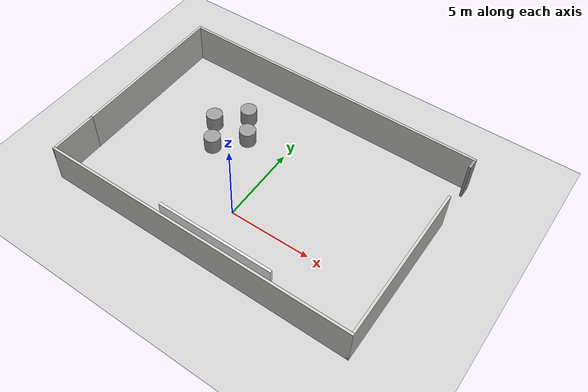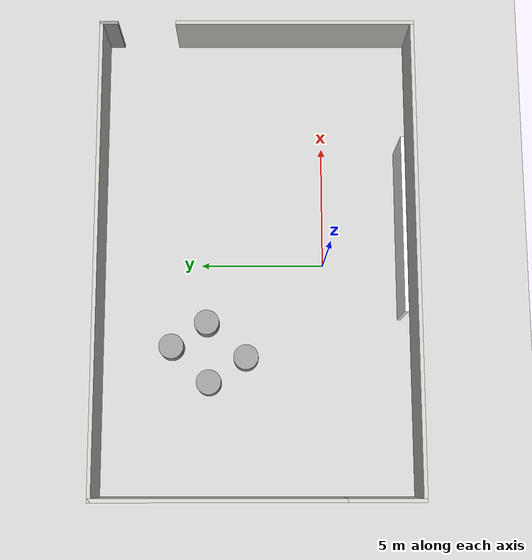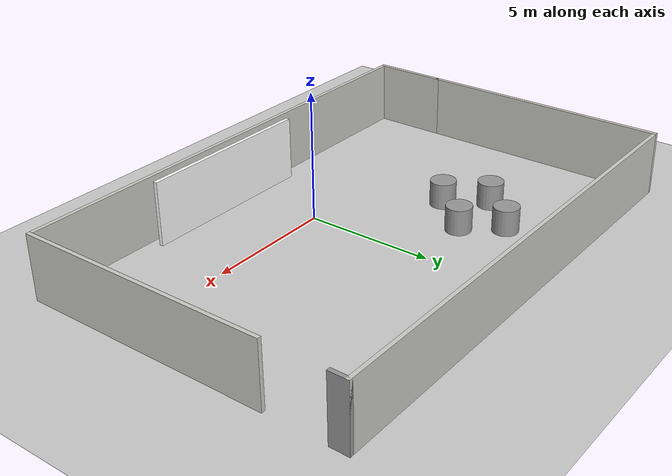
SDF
<sdf version="1.6">
 <world name="default">
  <light name="sun" type="directional">
   <pose>0 0 10 0 -0 0</pose>
   <diffuse>0.8 0.8 0.8 1</diffuse>
   <specular>0.1 0.1 0.1 1</specular>
   <attenuation>
    <range>1000</range>
    <constant>0.9</constant>
    <linear>0.01</linear>
    <quadratic>0.001</quadratic>
   </attenuation>
   <direction>-0.5 0.5 -1</direction>
  </light>
  <model name="ground_plane">
   <static>1</static>
   <link name="link">
    <collision name="collision">
     <geometry><plane><normal>0 0 1</normal><size>100 100</size></plane></geometry>
     <surface><friction><ode><mu>100</mu><mu2>50</mu2></ode></friction></surface>
    </collision>
    <visual name="visual">
     <cast_shadows>0</cast_shadows>
     <geometry><plane><normal>0 0 1</normal><size>100 100</size></plane></geometry>
     <material>
      <script><uri>file://media/materials/scripts/gazebo.material</uri><name>Gazebo/Grey</name></script>
     </material>
    </visual>
   </link>
  </model>
  <gravity>0 0 -9.8</gravity>
  <magnetic_field>6e-06 2.3e-05 -4.2e-05</magnetic_field>
  <atmosphere type="adiabatic"/>
  <physics name="default_physics" default="0" type="ode">
   <max_step_size>0.001</max_step_size>
   <real_time_factor>1</real_time_factor>
   <real_time_update_rate>1000</real_time_update_rate>
  </physics>
  <scene><ambient>0.4 0.4 0.4 1</ambient><background>0.7 0.7 0.7 1</background><shadows>1</shadows></scene>
  <spherical_coordinates>
   <surface_model>EARTH_WGS84</surface_model>
   <latitude_deg>0</latitude_deg>
   <longitude_deg>0</longitude_deg>
   <elevation>0</elevation>
   <heading_deg>0</heading_deg>
  </spherical_coordinates>
  <model name="super">
   <pose>0.13966 2.72821 0 0 -0 0</pose>
   <link name="Wall_29">
    <collision name="Wall_29_Collision">
     <geometry><box><size>10 0.15 2.5</size></box></geometry>
     <pose>0 0 1.25 0 -0 0</pose>
    </collision>
    <visual name="Wall_29_Visual">
     <pose>0 0 1.25 0 -0 0</pose>
     <geometry><box><size>10 0.15 2.5</size></box></geometry>
     <material>
      <script><uri>file://media/materials/scripts/gazebo.material</uri><name>Gazebo/CeilingTiled</name></script>
      <ambient>1 1 1 1</ambient>
     </material>
    </visual>
    <pose>-9.55 1.425 0 0 0 -1.5708</pose>
   </link>
   <link name="Wall_30">
    <collision name="Wall_30_Collision">
     <geometry><box><size>0.15 0.15 2.5</size></box></geometry>
     <pose>0 0 1.25 0 -0 0</pose>
    </collision>
    <visual name="Wall_30_Visual">
     <pose>0 0 1.25 0 -0 0</pose>
     <geometry><box><size>0.15 0.15 2.5</size></box></geometry>
     <material>
      <script><uri>file://media/materials/scripts/gazebo.material</uri><name>Gazebo/Grey</name></script>
      <ambient>1 1 1 1</ambient>
     </material>
    </visual>
    <pose>-9.55 -3.5 0 0 -0 0</pose>
   </link>
   <link name="Wall_31">
    <collision name="Wall_31_Collision">
     <geometry><box><size>0.15 0.15 2.5</size></box></geometry>
     <pose>0 0 1.25 0 -0 0</pose>
    </collision>
    <visual name="Wall_31_Visual">
     <pose>0 0 1.25 0 -0 0</pose>
     <geometry><box><size>0.15 0.15 2.5</size></box></geometry>
     <material>
      <script><uri>file://media/materials/scripts/gazebo.material</uri><name>Gazebo/Grey</name></script>
      <ambient>1 1 1 1</ambient>
     </material>
    </visual>
    <pose>-9.55 -3.5 0 0 -0 0</pose>
   </link>
   <link name="Wall_34">
    <collision name="Wall_34_Collision">
     <geometry><box><size>3 0.15 2.5</size></box></geometry>
     <pose>0 0 1.25 0 -0 0</pose>
    </collision>
    <visual name="Wall_34_Visual">
     <pose>0 0 1.25 0 -0 0</pose>
     <geometry><box><size>3 0.15 2.5</size></box></geometry>
     <material>
      <script><uri>file://media/materials/scripts/gazebo.material</uri><name>Gazebo/CeilingTiled</name></script>
      <ambient>1 1 1 1</ambient>
     </material>
    </visual>
    <pose>-9.55 -4.925 0 0 0 -1.5708</pose>
   </link>
   <link name="Wall_35">
    <collision name="Wall_35_Collision">
     <geometry><box><size>19.25 0.15 2.5</size></box></geometry>
     <pose>0 0 1.25 0 -0 0</pose>
    </collision>
    <visual name="Wall_35_Visual">
     <pose>0 0 1.25 0 -0 0</pose>
     <geometry><box><size>19.25 0.15 2.5</size></box></geometry>
     <material>
      <script><uri>file://media/materials/scripts/gazebo.material</uri><name>Gazebo/CeilingTiled</name></script>
      <ambient>1 1 1 1</ambient>
     </material>
    </visual>
    <pose>0 -6.35 0 0 -0 0</pose>
   </link>
   <link name="Wall_36">
    <collision name="Wall_36_Collision">
     <geometry><box><size>9.75 0.15 2.5</size></box></geometry>
     <pose>0 0 1.25 0 -0 0</pose>
    </collision>
    <visual name="Wall_36_Visual">
     <pose>0 0 1.25 0 -0 0</pose>
     <geometry><box><size>9.75 0.15 2.5</size></box></geometry>
     <material>
      <script><uri>file://media/materials/scripts/gazebo.material</uri><name>Gazebo/CeilingTiled</name></script>
      <ambient>1 1 1 1</ambient>
     </material>
    </visual>
    <pose>9.55 -1.55 0 0 -0 1.5708</pose>
   </link>
   <link name="Wall_38">
    <collision name="Wall_38_Collision">
     <geometry><box><size>19.25 0.15 2.5</size></box></geometry>
     <pose>0 0 1.25 0 -0 0</pose>
    </collision>
    <visual name="Wall_38_Visual">
     <pose>0 0 1.25 0 -0 0</pose>
     <geometry><box><size>19.25 0.15 2.5</size></box></geometry>
     <material>
      <script><uri>file://media/materials/scripts/gazebo.material</uri><name>Gazebo/CeilingTiled</name></script>
      <ambient>1 1 1 1</ambient>
     </material>
    </visual>
    <pose>0 6.35 0 0 -0 0</pose>
   </link>
   <link name="Wall_40">
    <collision name="Wall_40_Collision">
     <geometry><box><size>0.75 0.15 2.5</size></box></geometry>
     <pose>0 0 1.25 0 -0 0</pose>
    </collision>
    <visual name="Wall_40_Visual">
     <pose>0 0 1.25 0 -0 0</pose>
     <geometry><box><size>0.75 0.15 2.5</size></box></geometry>
     <material>
      <script><uri>file://media/materials/scripts/gazebo.material</uri><name>Gazebo/Grey</name></script>
      <ambient>1 1 1 1</ambient>
     </material>
    </visual>
    <pose>9.55 6.05 0 0 0 -1.5708</pose>
   </link>
   <static>1</static>
  </model>
  <model name="cube_20k_4_0">
   <link name="link_6">
    <pose>-1.00377 1.52691 0.5 0 -0 0</pose>
    <inertial>
     <mass>1</mass>
     <inertia><ixx>0.145833</ixx><ixy>0</ixy><ixz>0</ixz><iyy>0.145833</iyy><iyz>0</iyz><izz>0.125</izz></inertia>
    </inertial>
    <visual name="visual">
     <geometry><cylinder><radius>0.5</radius><length>1</length></cylinder></geometry>
     <material>
      <lighting>1</lighting>
      <script><uri>file://media/materials/scripts/gazebo.material</uri><name>Gazebo/Grey</name></script>
      <ambient>0.3 0.3 0.3 1</ambient>
      <diffuse>0.7 0.7 0.7 1</diffuse>
      <specular>0.01 0.01 0.01 1</specular>
      <emissive>0 0 0 1</emissive>
     </material>
    </visual>
    <collision name="collision">
     <geometry><cylinder><radius>0.5</radius><length>1</length></cylinder></geometry>
     <surface>
      <friction>
       <ode><mu>1</mu><mu2>1</mu2><fdir1>0 0 0</fdir1><slip1>0</slip1><slip2>0</slip2></ode>
       <torsional>
        <coefficient>1</coefficient>
        <patch_radius>0</patch_radius>
        <surface_radius>0</surface_radius>
        <use_patch_radius>1</use_patch_radius>
        <ode><slip>0</slip></ode>
       </torsional>
      </friction>
      <bounce><restitution_coefficient>0</restitution_coefficient><threshold>1e+06</threshold></bounce>
      <contact>
       <collide_without_contact>0</collide_without_contact>
       <collide_without_contact_bitmask>1</collide_without_contact_bitmask>
       <collide_bitmask>1</collide_bitmask>
       <ode>
        <soft_cfm>0</soft_cfm>
        <soft_erp>0.2</soft_erp>
        <kp>1e+13</kp>
        <kd>1</kd>
        <max_vel>0.01</max_vel>
        <min_depth>0</min_depth>
       </ode>
       <bullet>
        <split_impulse>1</split_impulse>
        <split_impulse_penetration_threshold>-0.01</split_impulse_penetration_threshold>
        <soft_cfm>0</soft_cfm>
        <soft_erp>0.2</soft_erp>
        <kp>1e+13</kp>
        <kd>1</kd>
       </bullet>
      </contact>
     </surface>
    </collision>
   </link>
   <link name="link_7">
    <pose>-0.039656 0.113654 0.5 0 -0 0</pose>
    <inertial>
     <mass>1</mass>
     <inertia><ixx>0.145833</ixx><ixy>0</ixy><ixz>0</ixz><iyy>0.145833</iyy><iyz>0</iyz><izz>0.125</izz></inertia>
    </inertial>
    <visual name="visual">
     <geometry><cylinder><radius>0.5</radius><length>1</length></cylinder></geometry>
     <material>
      <lighting>1</lighting>
      <script><uri>file://media/materials/scripts/gazebo.material</uri><name>Gazebo/Grey</name></script>
      <ambient>0.3 0.3 0.3 1</ambient>
      <diffuse>0.7 0.7 0.7 1</diffuse>
      <specular>0.01 0.01 0.01 1</specular>
      <emissive>0 0 0 1</emissive>
     </material>
    </visual>
    <collision name="collision">
     <geometry><cylinder><radius>0.5</radius><length>1</length></cylinder></geometry>
     <surface>
      <friction>
       <ode><mu>1</mu><mu2>1</mu2><fdir1>0 0 0</fdir1><slip1>0</slip1><slip2>0</slip2></ode>
       <torsional>
        <coefficient>1</coefficient>
        <patch_radius>0</patch_radius>
        <surface_radius>0</surface_radius>
        <use_patch_radius>1</use_patch_radius>
        <ode><slip>0</slip></ode>
       </torsional>
      </friction>
      <bounce><restitution_coefficient>0</restitution_coefficient><threshold>1e+06</threshold></bounce>
      <contact>
       <collide_without_contact>0</collide_without_contact>
       <collide_without_contact_bitmask>1</collide_without_contact_bitmask>
       <collide_bitmask>1</collide_bitmask>
       <ode>
        <soft_cfm>0</soft_cfm>
        <soft_erp>0.2</soft_erp>
        <kp>1e+13</kp>
        <kd>1</kd>
        <max_vel>0.01</max_vel>
        <min_depth>0</min_depth>
       </ode>
       <bullet>
        <split_impulse>1</split_impulse>
        <split_impulse_penetration_threshold>-0.01</split_impulse_penetration_threshold>
        <soft_cfm>0</soft_cfm>
        <soft_erp>0.2</soft_erp>
        <kp>1e+13</kp>
        <kd>1</kd>
       </bullet>
      </contact>
     </surface>
    </collision>
   </link>
   <link name="link_8">
    <pose>-1.4397 -1.47309 0.5 0 -0 0</pose>
    <inertial>
     <mass>1</mass>
     <inertia><ixx>0.145833</ixx><ixy>0</ixy><ixz>0</ixz><iyy>0.145833</iyy><iyz>0</iyz><izz>0.125</izz></inertia>
    </inertial>
    <visual name="visual">
     <geometry><cylinder><radius>0.5</radius><length>1</length></cylinder></geometry>
     <material>
      <lighting>1</lighting>
      <script><uri>file://media/materials/scripts/gazebo.material</uri><name>Gazebo/Grey</name></script>
      <ambient>0.3 0.3 0.3 1</ambient>
      <diffuse>0.7 0.7 0.7 1</diffuse>
      <specular>0.01 0.01 0.01 1</specular>
      <emissive>0 0 0 1</emissive>
     </material>
    </visual>
    <collision name="collision">
     <geometry><cylinder><radius>0.5</radius><length>1</length></cylinder></geometry>
     <surface>
      <friction>
       <ode><mu>1</mu><mu2>1</mu2><fdir1>0 0 0</fdir1><slip1>0</slip1><slip2>0</slip2></ode>
       <torsional>
        <coefficient>1</coefficient>
        <patch_radius>0</patch_radius>
        <surface_radius>0</surface_radius>
        <use_patch_radius>1</use_patch_radius>
        <ode><slip>0</slip></ode>
       </torsional>
      </friction>
      <bounce><restitution_coefficient>0</restitution_coefficient><threshold>1e+06</threshold></bounce>
      <contact>
       <collide_without_contact>0</collide_without_contact>
       <collide_without_contact_bitmask>1</collide_without_contact_bitmask>
       <collide_bitmask>1</collide_bitmask>
       <ode>
        <soft_cfm>0</soft_cfm>
        <soft_erp>0.2</soft_erp>
        <kp>1e+13</kp>
        <kd>1</kd>
        <max_vel>0.01</max_vel>
        <min_depth>0</min_depth>
       </ode>
       <bullet>
        <split_impulse>1</split_impulse>
        <split_impulse_penetration_threshold>-0.01</split_impulse_penetration_threshold>
        <soft_cfm>0</soft_cfm>
        <soft_erp>0.2</soft_erp>
        <kp>1e+13</kp>
        <kd>1</kd>
       </bullet>
      </contact>
     </surface>
    </collision>
   </link>
   <link name="link_9">
    <pose>-2.4397 0.016899 0.5 0 -0 0</pose>
    <inertial>
     <mass>1</mass>
     <inertia><ixx>0.145833</ixx><ixy>0</ixy><ixz>0</ixz><iyy>0.145833</iyy><iyz>0</iyz><izz>0.125</izz></inertia>
    </inertial>
    <visual name="visual">
     <geometry><cylinder><radius>0.5</radius><length>1</length></cylinder></geometry>
     <material>
      <lighting>1</lighting>
      <script><uri>file://media/materials/scripts/gazebo.material</uri><name>Gazebo/Grey</name></script>
      <ambient>0.3 0.3 0.3 1</ambient>
      <diffuse>0.7 0.7 0.7 1</diffuse>
      <specular>0.01 0.01 0.01 1</specular>
      <emissive>0 0 0 1</emissive>
     </material>
    </visual>
    <collision name="collision">
     <geometry><cylinder><radius>0.5</radius><length>1</length></cylinder></geometry>
     <surface>
      <friction>
       <ode><mu>1</mu><mu2>1</mu2><fdir1>0 0 0</fdir1><slip1>0</slip1><slip2>0</slip2></ode>
       <torsional>
        <coefficient>1</coefficient>
        <patch_radius>0</patch_radius>
        <surface_radius>0</surface_radius>
        <use_patch_radius>1</use_patch_radius>
        <ode><slip>0</slip></ode>
       </torsional>
      </friction>
      <bounce><restitution_coefficient>0</restitution_coefficient><threshold>1e+06</threshold></bounce>
      <contact>
       <collide_without_contact>0</collide_without_contact>
       <collide_without_contact_bitmask>1</collide_without_contact_bitmask>
       <collide_bitmask>1</collide_bitmask>
       <ode>
        <soft_cfm>0</soft_cfm>
        <soft_erp>0.2</soft_erp>
        <kp>1e+13</kp>
        <kd>1</kd>
        <max_vel>0.01</max_vel>
        <min_depth>0</min_depth>
       </ode>
       <bullet>
        <split_impulse>1</split_impulse>
        <split_impulse_penetration_threshold>-0.01</split_impulse_penetration_threshold>
        <soft_cfm>0</soft_cfm>
        <soft_erp>0.2</soft_erp>
        <kp>1e+13</kp>
        <kd>1</kd>
       </bullet>
      </contact>
     </surface>
    </collision>
   </link>
   <static>1</static>
   <pose>-2.42274 4.64217 0 0 -0 0</pose>
  </model>
  <model name="shapewall_4">
   <link name="link">
    <pose>0 -6.35 0 0 -0 0</pose>
    <inertial>
     <inertia><ixx>nan</ixx><ixy>0</ixy><ixz>0</ixz><iyy>nan</iyy><iyz>0</iyz><izz>nan</izz></inertia>
     <mass>0</mass>
    </inertial>
    <visual name="visual">
     <pose>0 0 1.25 0 -0 0</pose>
     <cast_shadows>0</cast_shadows>
     <geometry><box><size>7.06804 0.15 2.5</size></box></geometry>
     <material>
      <script><uri>model://shapewall/materials/scripts/texture.material</uri><name>shapewall/Image</name></script>
      <ambient>1 1 1 1</ambient>
      <diffuse>1 1 1 1</diffuse>
      <specular>0 0 0 1</specular>
      <emissive>0 0 0 1</emissive>
     </material>
    </visual>
    <collision name="collision">
     <pose>0 0 1.25 0 -0 0</pose>
     <geometry><box><size>7.06804 0.15 2.5</size></box></geometry>
     <surface>
      <friction>
       <ode><mu>1</mu><mu2>1</mu2><fdir1>0 0 0</fdir1><slip1>0</slip1><slip2>0</slip2></ode>
       <torsional>
        <coefficient>1</coefficient>
        <patch_radius>0</patch_radius>
        <surface_radius>0</surface_radius>
        <use_patch_radius>1</use_patch_radius>
        <ode><slip>0</slip></ode>
       </torsional>
      </friction>
      <bounce><restitution_coefficient>0</restitution_coefficient><threshold>1e+06</threshold></bounce>
      <contact>
       <collide_without_contact>0</collide_without_contact>
       <collide_without_contact_bitmask>1</collide_without_contact_bitmask>
       <collide_bitmask>1</collide_bitmask>
       <ode>
        <soft_cfm>0</soft_cfm>
        <soft_erp>0.2</soft_erp>
        <kp>1e+13</kp>
        <kd>1</kd>
        <max_vel>0.01</max_vel>
        <min_depth>0</min_depth>
       </ode>
       <bullet>
        <split_impulse>1</split_impulse>
        <split_impulse_penetration_threshold>-0.01</split_impulse_penetration_threshold>
        <soft_cfm>0</soft_cfm>
        <soft_erp>0.2</soft_erp>
        <kp>1e+13</kp>
        <kd>1</kd>
       </bullet>
      </contact>
     </surface>
    </collision>
   </link>
   <static>1</static>
   <pose>1.28293 3.24443 0 0 -0 0</pose>
  </model>
  <light name="user_point_light_0" type="point">
   <pose>4.35618 3.28005 1 0 -0 0</pose>
   <diffuse>0.5 0.5 0.5 1</diffuse>
   <specular>0.1 0.1 0.1 1</specular>
   <attenuation>
    <range>20</range>
    <constant>0.5</constant>
    <linear>0.01</linear>
    <quadratic>0.001</quadratic>
   </attenuation>
   <cast_shadows>0</cast_shadows>
   <direction>0 0 -1</direction>
  </light>
  <light name="user_point_light_1" type="point">
   <pose>-2.09063 3.46411 1 0 -0 0</pose>
   <diffuse>0.5 0.5 0.5 1</diffuse>
   <specular>0.1 0.1 0.1 1</specular>
   <attenuation>
    <range>20</range>
    <constant>0.5</constant>
    <linear>0.01</linear>
    <quadratic>0.001</quadratic>
   </attenuation>
   <cast_shadows>0</cast_shadows>
   <direction>0 0 -1</direction>
  </light>
 </world>
</sdf>
